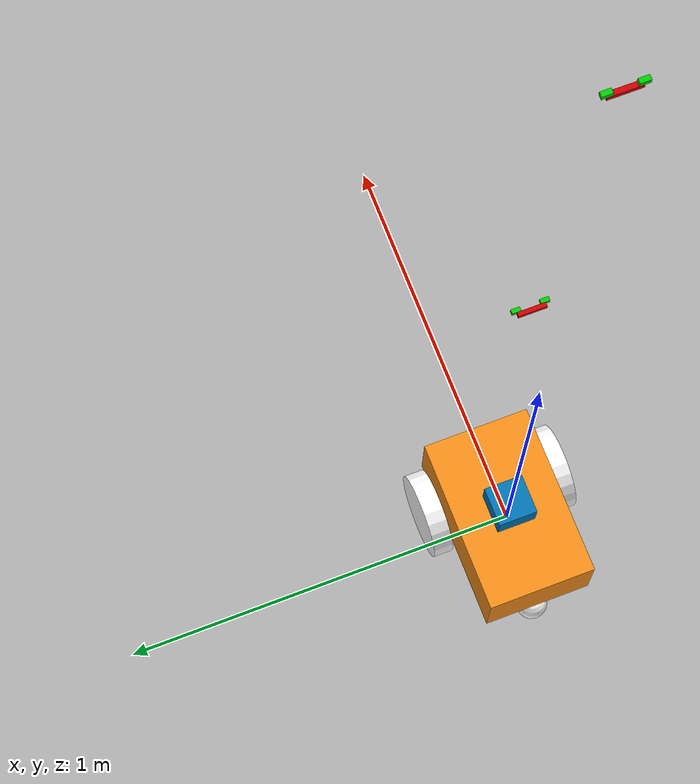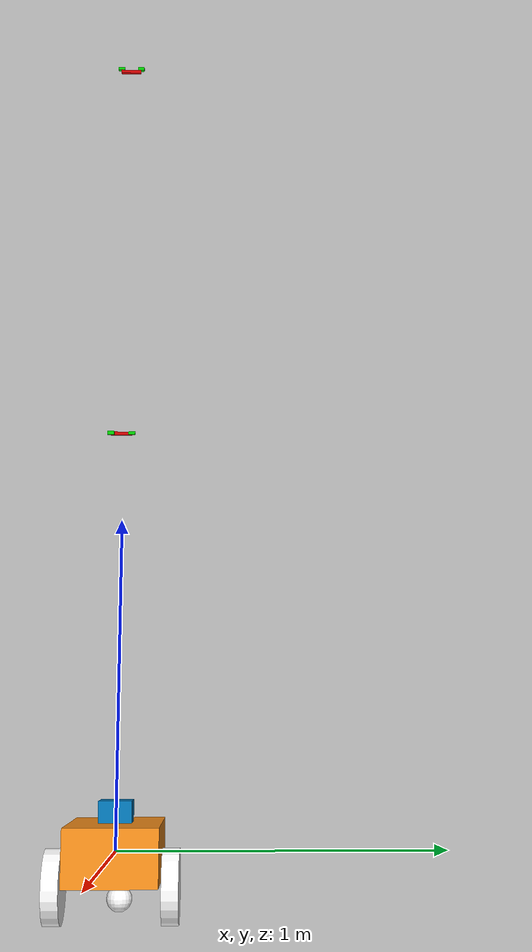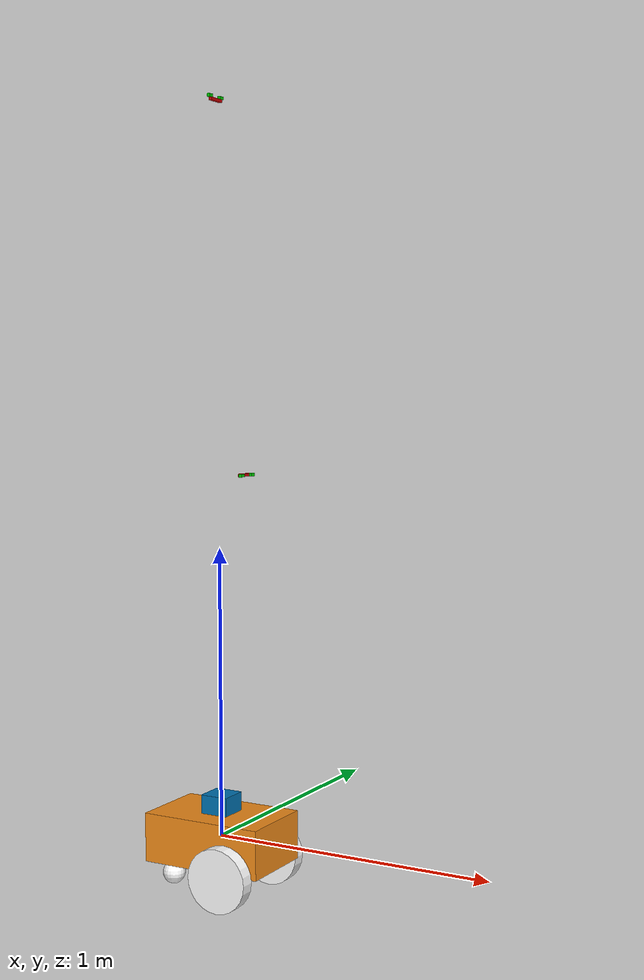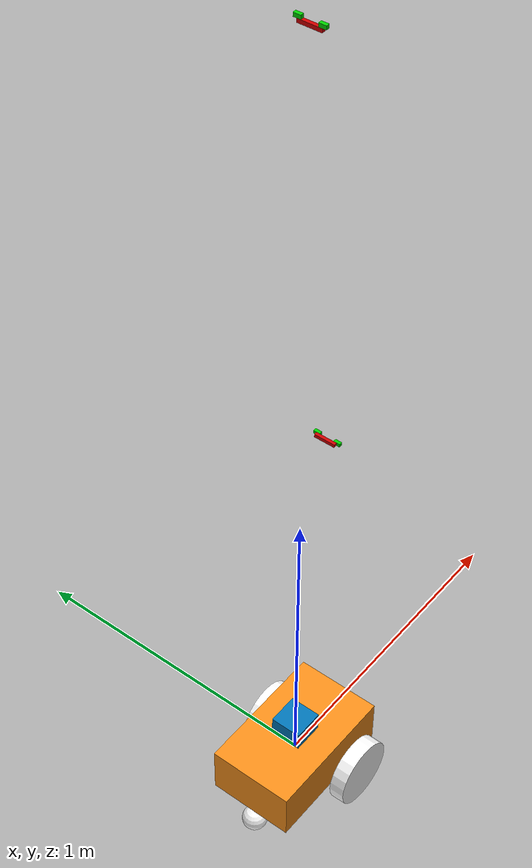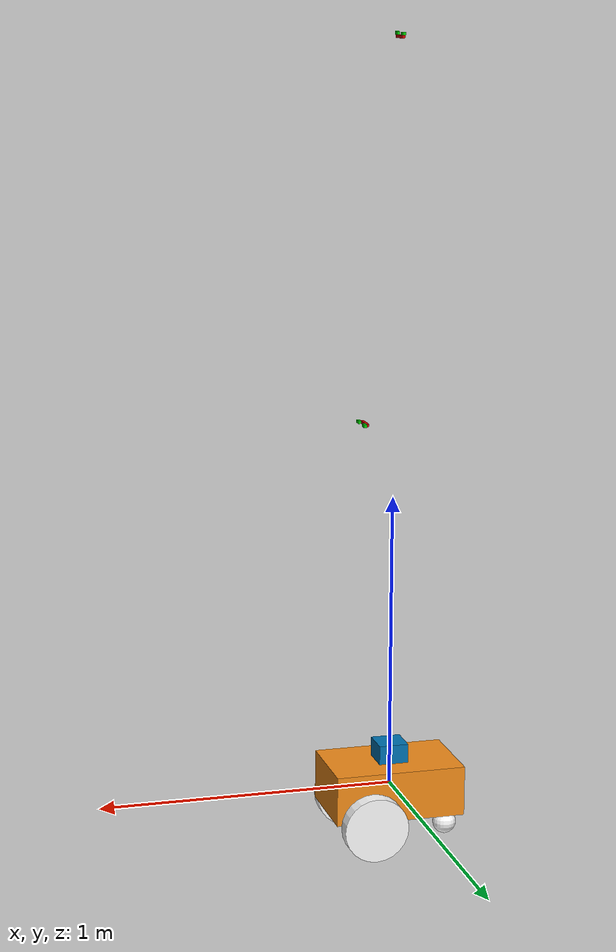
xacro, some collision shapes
<?xml version = "1.0" ?>
<robot name = "jacky" xmlns:xacro = "http://www.ros.org/wiki/xacro">
  <!-- include the xacro files -->
  <xacro:include filename = "$(find elsia)/urdf/jacky_materials.xacro"/>
  <xacro:include filename = "$(find elsia)/urdf/jacky.gazebo"/>

  <!-- xacro files from the stereocam_test_description -->
  <!-- Inertia matrices -->
  <xacro:include filename="$(find elsia)/urdf/macros.xacro" />
  <!-- Robot constants and properties -->
  <xacro:include filename="$(find elsia)/urdf/contact_robot_properties.xacro" />
  <!-- Body -->
  <xacro:include filename="$(find elsia)/urdf/head.xacro" />
  <!-- Arms -->
  <xacro:include filename="$(find elsia)/urdf/eyes.xacro" />
  <xacro:include filename="$(find elsia)/urdf/eyesUpward.xacro" />

  <!-- define a dummy link -->
  <link name = "base_link"/>

  <!-- first link -->
  <link name="link_jacky_chassis">
    <inertial>
      <orign rpy = "0 0 0" xyz = "0 0 0.16"/>
      <mass value = "5.67"/>
      <inertia ixx = "0.07" ixy = "0" ixz = "0" iyy = "0.08" iyz = "0" izz = "0.10"/>
    </inertial>
    <collision name="collision">
      <geometry>
        <box size = "0.445 0.277 0.17"/>
      </geometry>
    </collision>
    <visual name="visual">
      <geometry>
        <mesh filename="package://elsia/meshes/chassis.dae"/>
      </geometry>
    </visual>
  </link>

  <!-- define the castor -->
  <link name = "link_castor">
    <inertial>
      <mass value = "0.5"/>
      <inertia ixx = "0.0000064" ixy = "0" ixz = "0" iyy = "0.0000064" iyz = "0" izz = "0.0000064"/>
    </inertial>
    <collision name = "collision">
      <geometry>
        <sphere radius = "0.04"/>
      </geometry>
    </collision>
    <surface>
      <friction>
        <ode>
          <mu>0.0</mu>
          <mu2>0.0</mu2>
          <slip1>0.0</slip1>
          <slip2>0.0</slip2>
        </ode>
      </friction>
    </surface>
    <visual>
      <geometry>
        <sphere radius = "0.04"/>
      </geometry>
      <material name = "white"/>
    </visual>
  </link>

  <!--  define a fixed joint-->
  <joint name = "castor_joint" type = "fixed">
    <origin rpy = "0 0 0" xyz = "-0.2 0 -0.16"/>
    <parent link = "link_jacky_chassis"/>
    <child link = "link_castor"/>
  </joint>

  <!-- define the base_joint -->
  <joint name = "base_joint" type = "fixed">
    <parent link = "base_link"/>
    <child link = "link_jacky_chassis"/>
  </joint>

  <!-- define the right wheel -->
  <link name="link_jacky_right_wheel">
    <pose>0 0 0 0 0 0</pose>
    <inertial>
      <mass value = "1.5"/>
      <inertia ixx = "0.0051" ixy = "0.0" ixz = "0.0"
        iyy = "0.0051" iyz = "0.0" izz = "0.0090"/>
    </inertial>
    <collision name="collision">
      <geometry>
        <cylinder radius = "0.11" length = "0.05"/>
      </geometry>
      <surface>
        <friction>
          <ode>
            <mu>100000.0</mu>
            <mu2>100000.0</mu2>
            <slip1>0.0</slip1>
            <slip2>0.0</slip2>
          </ode>
        </friction>
      </surface>
    </collision>
    <visual name="visual">
      <geometry>
        <cylinder radius = "0.11" length = "0.05"/>
      </geometry>
      <material name = "white"/>
    </visual>
  </link>

  <!-- define a joint with respect to the link_jacky_chassis-->
 <joint name="joint_right_wheel" type="continuous">
   <parent link="link_jacky_chassis"/>
   <child link="link_jacky_right_wheel"/>
   <axis xyz="0 0 1"/>
   <origin rpy = "-1.5707 0 0" xyz="0.1 -0.17 -0.09"/>
 </joint>

 <!-- define the left wheel wheel -->
 <link name="link_jacky_left_wheel">
   <pose>0 0 0 0 0 0</pose>
   <inertial>
     <mass value = "1.5"/>
     <inertia ixx = "0.0051" ixy = "0.0" ixz = "0.0"
       iyy = "0.0051" iyz = "0.0" izz = "0.0090"/>
   </inertial>
   <collision name="collision">
     <geometry>
       <cylinder radius = "0.11" length = "0.05"/>
     </geometry>
     <surface>
       <friction>
         <ode>
           <mu>100000.0</mu>
           <mu2>100000.0</mu2>
           <slip1>0.0</slip1>
           <slip2>0.0</slip2>
         </ode>
       </friction>
     </surface>
   </collision>
   <visual name="visual">
     <geometry>
       <cylinder radius = "0.11" length = "0.05"/>
     </geometry>
     <material name = "white"/>
   </visual>
 </link>

 <!-- define a joint with respect to the link_jacky_chassis-->
 <joint name="joint_left_wheel" type="continuous">
   <parent link="link_jacky_chassis"/>
   <child link="link_jacky_left_wheel"/>
   <axis xyz="0 0 1"/>
   <origin rpy = "-1.5707 0 0" xyz="0.1 0.17 -0.09"/>
 </joint>

 <!-- Code for adding stereo camera -->
 <!-- origin_xyz = "0.0 0.0 0.75" use this for original aisle odometry -->
<!-- working setting for act prop 0.1 0.0 1.25-->
 <body number = "C" origin_rpy = "0 0 0" origin_xyz = "0.1 0.0 1.25"/> <!-- origin_xyz = "0.2 0 0.1 -->
 <eye parent = "head_C" lr = "left" tY = "-1"/>
 <eye parent = "head_C" lr = "right" tY = "1"/>

 <!-- origin_xyz = "0.0 0.0 0.85" use this for original aisle odometry -->
<!-- working setting for act prop 0.0 0.0 0.15-->
 <body number = "U" origin_rpy = "0 -1.5708 0" origin_xyz = "0.0 0.0 2.5"/> <!-- origin_xyz = "0.2 0 0.1 ,,,,0 0 0.15 -->
 <eye_upward parent = "head_U" lr = "left_upward" tY = "-1"/>
 <eye_upward parent = "head_U" lr = "right_upward" tY = "1"/>

  <!-- Imu -->
  <link name = "imu_link">
    <collision>
      <origin xyz = "0 0 0" rpy = "0 0 0"/>
      <geometry>
        <box size = "0.02 0.02 0.02"/>
      </geometry>
    </collision>
    <visual>
      <origin xyz = "0 0 0" rpy = "0 0 0"/>
      <geometry>
        <box size = "0.02 0.02 0.02"/>
      </geometry>
      <material name = "white"/>
    </visual>
    <inertial>
      <mass value = "0.001"/>
      <origin xyz = "0 0 0" rpy = "0 0 0"/>
      <inertia ixx="0.00000015" ixy="0" ixz="0" iyy="0.00000015" iyz="0" izz="0.00000015" />
    </inertial>
  </link>

  <joint name = "imu_sensor_joint" type = "fixed">
    <axis xyz = "0 0 1"/>
    <origin xyz = "0 0 0" rpy = "0 0 0"/>
    <parent link = "link_jacky_chassis"/>
    <child link = "imu_link"/>
  </joint>

  <!--laser sensor -->
  <link name="hokuyo_link">
    <collision>
      <origin xyz="0 0 0" rpy="0 0 0"/>
      <geometry>
    <box size="0.1 0.1 0.1"/>
      </geometry>
    </collision>

    <visual>
      <origin xyz="0 0 0" rpy="0 0 0"/>
      <geometry>
        <mesh filename="package://elsia/meshes/hokuyo.dae"/>
      </geometry>
    </visual>

    <inertial>
      <mass value="1e-5" />
      <origin xyz="0 0 0" rpy="0 0 0"/>
      <inertia ixx="1e-6" ixy="0" ixz="0" iyy="1e-6" iyz="0" izz="1e-6" />
    </inertial>
  </link>

  <joint name = "hokuyo_joint" type = "fixed">
    <axis xyz = "0 1 0"/>
    <!--  use 0 0 0.6 for original aisle odom code -->
    <origin xyz = "0 0 0.1" rpy = "0 0 0"/>
    <parent link = "base_link"/>
    <child link = "hokuyo_link"/>
  </joint>
</robot>

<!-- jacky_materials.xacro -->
<robot>
  <!-- DEFINING DEFAULT COLORS TO BE USED LATER IN M2WR.XACRO FILE-->
  <material name="black">
	  <color rgba="0.0 0.0 0.0 1.0"/>
	</material>

	<material name="blue">
	  <color rgba="0.0 0.0 0.8 1.0"/>
	</material>

	<material name="green">
	  <color rgba="0.0 0.8 0.0 1.0"/>
	</material>

	<material name="grey">
	  <color rgba="0.2 0.2 0.2 1.0"/>
	</material>

	<material name="light_grey">
      <color rgba="0.6 0.6 0.6 1"/>
    </material>

    <material name="dark_grey">
      <color rgba="0.3 0.3 0.3 1"/>
    </material>

	<material name="orange">
	  <color rgba="${255/255} ${108/255} ${10/255} 1.0"/>
	</material>

	<material name="brown">
	  <color rgba="${222/255} ${207/255} ${195/255} 1.0"/>
	</material>

	<material name="red">
	  <color rgba="0.8 0.0 0.0 1.0"/>
	</material>

	<material name="white">
	  <color rgba="1.0 1.0 1.0 1.0"/>
	</material>
</robot>

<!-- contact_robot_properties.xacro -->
<robot xmlns:xacro="http://www.ros.org/wiki/xacro">

	<!-- Constants -->
	<xacro:property name="PI" value="3.1415926535897931"/>

  <xacro:property name="Total_Weight" value="0.01"/>

	<!-- Body properties -->
	<xacro:property name="head_X_Size" value="0.01"/>
	<!-- https://en.wikipedia.org/wiki/Pupillary_distance -->
	<xacro:property name="head_Y_Size" value="0.064"/>
	<xacro:property name="head_Z_Size" value="0.01"/>
  <xacro:property name="head_Mass_Percentage" value="0.5415"/>
	<xacro:property name="headMass" value="${head_Mass_Percentage * Total_Weight}"/>
  <xacro:property name="head_X_Offset" value="0.0"/>
	<xacro:property name="head_Y_Offset" value="0.0"/>
	<xacro:property name="head_Z_Offset" value="0.248"/>

	<!-- eyes Properties properties -->
	<xacro:property name="eye_radius" value="${head_Z_Size}"/>
	<xacro:property name="eye_length" value="${head_Z_Size * 2.0}"/>
  <xacro:property name="Uppereye_Mass_Percentage" value="0.0325"/>
	<xacro:property name="Upper_eyeMass" value="${Uppereye_Mass_Percentage * Total_Weight}"/>
  <xacro:property name="eye_X_Offset" value="0.0"/>
	<xacro:property name="eye_Y_Offset" value="${head_Y_Size / 2.0}"/>
	<xacro:property name="eye_Z_Offset" value="${head_Z_Size / 2.0}"/>
    <xacro:property name="eye_yaw_Offset" value="0.0"/>

	<!-- Fist properties -->
	<xacro:property name="fist_radius" value="${head_X_Size}"/>
  <xacro:property name="Fist_Mass_Percentage" value="0.0065"/>
	<xacro:property name="FistMass" value="${Fist_Mass_Percentage * Total_Weight}"/>
  <xacro:property name="fist_X_Offset" value="0.0"/>
	<xacro:property name="fist_Y_Offset" value="0.0"/>
	<xacro:property name="fist_Z_Offset" value="${eye_length + fist_radius}"/>

</robot>

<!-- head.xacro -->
<robot xmlns:xacro="http://www.ros.org/wiki/xacro">

  <xacro:macro name="body" params = "number origin_xyz origin_rpy">

    <link name='head_${number}'>
      <inertial>
        <origin xyz="0 0 ${head_Z_Size/2.0}"
          rpy="0 0 0" />
        <mass value="${headMass}"/>
        <box_inertia
          m="${headMass}"
          x="${head_X_Size}"
          y="${head_Y_Size}"
          z="${head_Z_Size}"/>
      </inertial>
      <collision>
        <origin xyz="0 0 ${head_Z_Size/2.0}"
                rpy="0 0 0" />
        <geometry>
          <box size="${head_X_Size} ${head_Y_Size} ${head_Z_Size}"/>
        </geometry>
      </collision>
      <visual>
        <origin xyz="0 0 ${head_Z_Size/2.0}"
        		rpy="0 0 0" />
        <geometry>
          <box size="${head_X_Size} ${head_Y_Size} ${head_Z_Size}"/>
        </geometry>
        <material name="red"/>
      </visual>
    </link>

    <gazebo reference="head_${number}">
      <mu1>0.01</mu1>
      <mu2>0.01</mu2>
      <kp>100000.0</kp>
      <kd>1000000.0</kd>
      <material>Gazebo/Red</material>
    </gazebo>

    <joint name="head_joint_${number}" type="fixed">
      <origin rpy="${origin_rpy}" xyz="${origin_xyz}" />
      <parent link="link_jacky_chassis" />
      <child link="head_${number}" />
    </joint>

  </xacro:macro>

</robot>

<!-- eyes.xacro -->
<robot xmlns:xacro="http://www.ros.org/wiki/xacro">

  <xacro:macro name="eye" params="parent lr tY">

    <link name="${lr}"> <!-- ${parent}_${lr}_eye -->
      <collision>
        <origin xyz="0 0 ${eye_length/2.0}"
        		rpy="0 0 0" />
        <geometry>
            <box size="${eye_length} ${eye_radius} ${eye_radius}"/>
        </geometry>
      </collision>

      <visual>
        <origin xyz="0 0 ${eye_length/2.0}"
        		rpy="0 0 0" />
        <geometry>
          <box size="${eye_length} ${eye_radius} ${eye_radius}"/>
        </geometry>
        <material name="green"/>
      </visual>

      <inertial>
        <origin xyz="0 0 ${eye_length/2.0}"
        		rpy="0 0 0" />
        <mass value="${Upper_eyeMass}"/>
        <box_inertia
          m="${Upper_eyeMass}"
          x="${eye_length}"
          y="${eye_radius}"
          z="${eye_radius}"/>
      </inertial>
    </link>

    <gazebo reference="${lr}"> <!-- ${parent}_${lr}_eye -->
      <mu1>1.0</mu1>
      <mu2>1.0</mu2>
      <kp>10000000.0</kp>
      <kd>10000000.0</kd>
      <minDepth>0.001</minDepth>
      <maxVel>1.0</maxVel>
      <material>Gazebo/Green</material>
    </gazebo>

    <joint name="${lr}" type="fixed"> <!-- ${parent}_${lr}_eye_hinge -->
      <parent link="${parent}"/>
      <child link="${lr}"/> <!-- ${parent}_${lr}_eye -->
      <origin
        xyz = "${eye_X_Offset} ${-tY*(eye_Y_Offset)} ${eye_Z_Offset}"
        rpy = "-1.5708  0 -1.5708" /> <!-- rpy = "0 0 ${eye_yaw_Offset}"  -->
    </joint>

    <gazebo reference="${lr}"> <!-- ${parent}_${lr}_eye -->
      <sensor type="camera" name="camera_${lr}"> <!-- {parent}_${lr}_eye -->
        <update_rate>10.0</update_rate>
        <camera name="${lr}"> <!-- ${parent}_${lr}_eye_cam -->

            <pose>0 0 0 0 -1.5708 1.5708 </pose> <!-- the pose will be determined by this I guess  -1.5708 1.5708 0-->

          <horizontal_fov>1.3962634</horizontal_fov>
          <image>
            <width>400</width>
            <height>400</height>
            <format>R8G8B8</format>
          </image>
          <clip>
            <near>0.01</near>
            <far>300</far>
          </clip>
          <noise>
            <type>gaussian</type>
            <stddev>0</stddev>
          </noise>
        </camera>
        <plugin name="camera_controller" filename="libgazebo_ros_camera.so">
          <alwaysOn>true</alwaysOn>
          <updateRate>0.0</updateRate>
          <cameraName>stereo/${lr}</cameraName> <!--${parent}_${lr}-->
          <imageTopicName>image_rect</imageTopicName> <!-- image_raw -->
          <cameraInfoTopicName>camera_info</cameraInfoTopicName>
          <frameName>${lr}</frameName> <!-- ${parent}_${lr}_eye -->
          <hackBaseline>0.07</hackBaseline>
          <distortionK1>0.0</distortionK1>
          <distortionK2>0.0</distortionK2>
          <distortionK3>0.0</distortionK3>
          <distortionT1>0.0</distortionT1>
          <distortionT2>0.0</distortionT2>
        </plugin>
      </sensor>
    </gazebo>

  </xacro:macro>

</robot>

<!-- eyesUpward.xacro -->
<robot xmlns:xacro="http://www.ros.org/wiki/xacro">

  <xacro:macro name="eye_upward" params="parent lr tY">

    <link name="${lr}"> <!-- ${parent}_${lr}_eye -->
      <collision>
        <origin xyz="0 0 ${eye_length/2.0}"
        		rpy="0 0 0" />
        <geometry>
            <box size="${eye_length} ${eye_radius} ${eye_radius}"/>
        </geometry>
      </collision>

      <visual>
        <origin xyz="0 0 ${eye_length/2.0}"
        		rpy="0 0 0" />
        <geometry>
          <box size="${eye_length} ${eye_radius} ${eye_radius}"/>
        </geometry>
        <material name="green"/>
      </visual>

      <inertial>
        <origin xyz="0 0 ${eye_length/2.0}"
        		rpy="0 0 0" />
        <mass value="${Upper_eyeMass}"/>
        <box_inertia
          m="${Upper_eyeMass}"
          x="${eye_length}"
          y="${eye_radius}"
          z="${eye_radius}"/>
      </inertial>
    </link>

    <gazebo reference="${lr}"> <!-- ${parent}_${lr}_eye -->
      <mu1>1.0</mu1>
      <mu2>1.0</mu2>
      <kp>10000000.0</kp>
      <kd>10000000.0</kd>
      <minDepth>0.001</minDepth>
      <maxVel>1.0</maxVel>
      <material>Gazebo/Green</material>
    </gazebo>

    <joint name="${lr}" type="fixed"> <!-- ${parent}_${lr}_eye_hinge -->
      <parent link="${parent}"/>
      <child link="${lr}"/> <!-- ${parent}_${lr}_eye -->
      <origin
        xyz = "${eye_X_Offset} ${-tY*(eye_Y_Offset)} ${eye_Z_Offset}"
        rpy = "-1.5708  0 -1.5708" /> <!-- rpy = "0 0 ${eye_yaw_Offset}"  -->
    </joint>

    <gazebo reference="${lr}"> <!-- ${parent}_${lr}_eye -->
      <sensor type="camera" name="camera_${lr}"> <!-- {parent}_${lr}_eye -->
        <update_rate>50.0</update_rate> <!-- change from 10 to 50 Hz -->
        <camera name="${lr}"> <!-- ${parent}_${lr}_eye_cam -->

            <pose>0 0 0 0 -1.5708 1.5708</pose> <!-- the pose will be determined by this I guess  -1.5708 1.5708 0-->

          <horizontal_fov>1.3962634</horizontal_fov>
          <image>
            <width>400</width>
            <height>400</height>
            <format>R8G8B8</format>
          </image>
          <clip>
            <near>0.01</near>
            <far>300</far>
          </clip>
          <noise>
            <type>gaussian</type>
            <stddev>0</stddev>
          </noise>
        </camera>
        <plugin name="camera_controller" filename="libgazebo_ros_camera.so">
          <alwaysOn>true</alwaysOn>
          <updateRate>0.0</updateRate>
          <cameraName>stereo/${lr}</cameraName> <!--${parent}_${lr}-->
          <imageTopicName>image_rect</imageTopicName> <!-- image_raw -->
          <cameraInfoTopicName>camera_info</cameraInfoTopicName>
          <frameName>${lr}</frameName> <!-- ${parent}_${lr}_eye -->
          <hackBaseline>0.07</hackBaseline>
          <distortionK1>0.0</distortionK1>
          <distortionK2>0.0</distortionK2>
          <distortionK3>0.0</distortionK3>
          <distortionT1>0.0</distortionT1>
          <distortionT2>0.0</distortionT2>
        </plugin>
      </sensor>
    </gazebo>

  </xacro:macro>

</robot>
